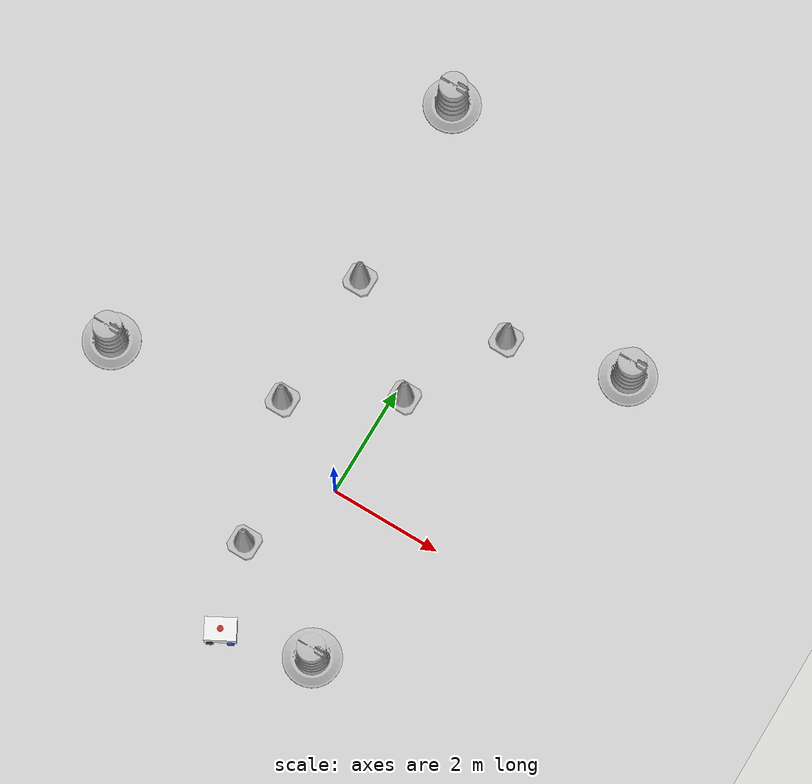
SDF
<sdf version="1.7">
 <world name="default">
  <light name="sun" type="directional">
   <pose>0 0 10 0 -0 0</pose>
   <diffuse>0.8 0.8 0.8 1</diffuse>
   <specular>0.2 0.2 0.2 1</specular>
   <attenuation>
    <range>1000</range>
    <constant>0.9</constant>
    <linear>0.01</linear>
    <quadratic>0.001</quadratic>
   </attenuation>
   <direction>-0.5 0.1 -0.9</direction>
   <spot><inner_angle>0</inner_angle><outer_angle>0</outer_angle><falloff>0</falloff></spot>
  </light>
  <model name="ground_plane">
   <static>1</static>
   <link name="link">
    <collision name="collision">
     <geometry><plane><normal>0 0 1</normal><size>100 100</size></plane></geometry>
     <surface><friction><ode><mu>100</mu><mu2>50</mu2></ode></friction></surface>
    </collision>
    <visual name="visual">
     <cast_shadows>0</cast_shadows>
     <geometry><plane><normal>0 0 1</normal><size>100 100</size></plane></geometry>
     <material>
      <script><uri>file://media/materials/scripts/gazebo.material</uri><name>Gazebo/Grey</name></script>
     </material>
    </visual>
   </link>
  </model>
  <gravity>0 0 -9.8</gravity>
  <magnetic_field>6e-06 2.3e-05 -4.2e-05</magnetic_field>
  <atmosphere type="adiabatic"/>
  <physics type="ode">
   <max_step_size>0.001</max_step_size>
   <real_time_factor>1</real_time_factor>
   <real_time_update_rate>1000</real_time_update_rate>
  </physics>
  <scene><ambient>0.4 0.4 0.4 1</ambient><background>0.7 0.7 0.7 1</background><shadows>1</shadows></scene>
  <audio><device>default</device></audio>
  <spherical_coordinates>
   <surface_model>EARTH_WGS84</surface_model>
   <latitude_deg>0</latitude_deg>
   <longitude_deg>0</longitude_deg>
   <elevation>0</elevation>
   <heading_deg>0</heading_deg>
  </spherical_coordinates>
  <model name="my_bot">
   <link name="base_link">
    <inertial>
     <pose>0.2625 0 0.074583 0 -0 0</pose>
     <mass>1.2</mass>
     <inertia>
      <ixx>0.0425877</ixx>
      <ixy>0</ixy>
      <ixz>0.00783125</ixz>
      <iyy>0.0341665</iyy>
      <iyz>-6.42685e-20</iyz>
      <izz>0.0533971</izz>
     </inertia>
    </inertial>
    <collision name="base_link_fixed_joint_lump__chassis_collision">
     <pose>0.175 0 0.125 0 -0 0</pose>
     <geometry><box><size>0.55 0.4 0.25</size></box></geometry>
    </collision>
    <collision name="base_link_fixed_joint_lump__front_left_wheel_collision_1">
     <pose>0.35 0.2 0 -1.5708 0 0</pose>
     <geometry><cylinder><length>0.06</length><radius>0.065</radius></cylinder></geometry>
     <surface><friction><ode><mu>0.0001</mu><mu2>0.0001</mu2></ode></friction></surface>
    </collision>
    <collision name="base_link_fixed_joint_lump__front_right_wheel_collision_2">
     <pose>0.35 -0.2 0 1.5708 -0 0</pose>
     <geometry><cylinder><length>0.06</length><radius>0.065</radius></cylinder></geometry>
     <surface><friction><ode><mu>0.0001</mu><mu2>0.0001</mu2></ode></friction></surface>
    </collision>
    <collision name="base_link_fixed_joint_lump__laser_frame_collision_3">
     <pose>0.175 0 0.27 0 -0 0</pose>
     <geometry><cylinder><length>0.04</length><radius>0.05</radius></cylinder></geometry>
    </collision>
    <visual name="base_link_fixed_joint_lump__chassis_visual">
     <pose>0.175 0 0.125 0 -0 0</pose>
     <geometry><box><size>0.55 0.4 0.25</size></box></geometry>
     <material>
      <script><name>Gazebo/White</name><uri>file://media/materials/scripts/gazebo.material</uri></script>
     </material>
    </visual>
    <visual name="base_link_fixed_joint_lump__front_left_wheel_visual_1">
     <pose>0.35 0.2 0 -1.5708 0 0</pose>
     <geometry><cylinder><length>0.06</length><radius>0.065</radius></cylinder></geometry>
     <material>
      <script><name>Gazebo/Black</name><uri>file://media/materials/scripts/gazebo.material</uri></script>
     </material>
    </visual>
    <visual name="base_link_fixed_joint_lump__front_right_wheel_visual_2">
     <pose>0.35 -0.2 0 1.5708 -0 0</pose>
     <geometry><cylinder><length>0.06</length><radius>0.065</radius></cylinder></geometry>
     <material>
      <script><name>Gazebo/Black</name><uri>file://media/materials/scripts/gazebo.material</uri></script>
     </material>
    </visual>
    <visual name="base_link_fixed_joint_lump__laser_frame_visual_3">
     <pose>0.175 0 0.27 0 -0 0</pose>
     <geometry><cylinder><length>0.04</length><radius>0.05</radius></cylinder></geometry>
     <material>
      <script><name>Gazebo/Red</name><uri>file://media/materials/scripts/gazebo.material</uri></script>
     </material>
    </visual>
    <sensor name="laser" type="ray">
     <visualize>1</visualize>
     <update_rate>10</update_rate>
     <ray>
      <scan>
       <horizontal>
        <samples>360</samples>
        <min_angle>-3.14</min_angle>
        <max_angle>3.14</max_angle>
        <resolution>1</resolution>
       </horizontal>
       <vertical><samples>1</samples><min_angle>0</min_angle><max_angle>0</max_angle></vertical>
      </scan>
      <range><min>0.3</min><max>12</max></range>
     </ray>
     <plugin name="laser_controller" filename="libgazebo_ros_ray_sensor.so">
      <ros><argument>~/out:=scan</argument></ros>
      <output_type>sensor_msgs/LaserScan</output_type>
      <frame_name>laser_frame</frame_name>
     </plugin>
     <pose>0.175 0 0.27 0 -0 0</pose>
    </sensor>
   </link>
   <joint name="back_left_wheel_joint" type="revolute">
    <pose relative_to="base_link">0 0.2 0 -1.5708 0 0</pose>
    <parent>base_link</parent>
    <child>back_left_wheel</child>
    <axis>
     <xyz>0 0 1</xyz>
     <limit><lower>-1e+16</lower><upper>1e+16</upper></limit>
     <dynamics><spring_reference>0</spring_reference><spring_stiffness>0</spring_stiffness></dynamics>
    </axis>
   </joint>
   <link name="back_left_wheel">
    <pose relative_to="back_left_wheel_joint">0 0 0 0 -0 0</pose>
    <inertial>
     <mass>0.3</mass>
     <inertia>
      <ixx>0.000406875</ixx>
      <ixy>0</ixy>
      <ixz>0</ixz>
      <iyy>0.000406875</iyy>
      <iyz>0</iyz>
      <izz>0.00063375</izz>
     </inertia>
    </inertial>
    <collision name="back_left_wheel_collision">
     <geometry><cylinder><length>0.06</length><radius>0.065</radius></cylinder></geometry>
    </collision>
    <visual name="back_left_wheel_visual">
     <geometry><cylinder><length>0.06</length><radius>0.065</radius></cylinder></geometry>
     <material>
      <script><name>Gazebo/Blue</name><uri>file://media/materials/scripts/gazebo.material</uri></script>
     </material>
    </visual>
   </link>
   <joint name="back_right_wheel_joint" type="revolute">
    <pose relative_to="base_link">0 -0.2 0 1.5708 -0 0</pose>
    <parent>base_link</parent>
    <child>back_right_wheel</child>
    <axis>
     <xyz>0 0 -1</xyz>
     <limit><lower>-1e+16</lower><upper>1e+16</upper></limit>
     <dynamics><spring_reference>0</spring_reference><spring_stiffness>0</spring_stiffness></dynamics>
    </axis>
   </joint>
   <link name="back_right_wheel">
    <pose relative_to="back_right_wheel_joint">0 0 0 0 -0 0</pose>
    <inertial>
     <mass>0.3</mass>
     <inertia>
      <ixx>0.000406875</ixx>
      <ixy>0</ixy>
      <ixz>0</ixz>
      <iyy>0.000406875</iyy>
      <iyz>0</iyz>
      <izz>0.00063375</izz>
     </inertia>
    </inertial>
    <collision name="back_right_wheel_collision">
     <geometry><cylinder><length>0.06</length><radius>0.065</radius></cylinder></geometry>
    </collision>
    <visual name="back_right_wheel_visual">
     <geometry><cylinder><length>0.06</length><radius>0.065</radius></cylinder></geometry>
     <material>
      <script><name>Gazebo/Blue</name><uri>file://media/materials/scripts/gazebo.material</uri></script>
     </material>
    </visual>
   </link>
   <static>0</static>
   <plugin name="gazebo_ros2_control" filename="libgazebo_ros2_control.so">
    <parameters>/home/ahmed/dev_ws/install/my_bot/share/my_bot/config/my_controllers.yaml</parameters>
   </plugin>
   <pose>-0.233836 -2.9507 0.065 0 0 -2.63941</pose>
  </model>
  <model name="Construction Cone">
   <link name="link">
    <collision name="collision">
     <geometry>
      <mesh><scale>10 10 10</scale><uri>model://construction_cone/meshes/construction_cone.dae</uri></mesh>
     </geometry>
    </collision>
    <visual name="visual">
     <geometry>
      <mesh><scale>10 10 10</scale><uri>model://construction_cone/meshes/construction_cone.dae</uri></mesh>
     </geometry>
    </visual>
    <inertial>
     <inertia><ixx>1</ixx><ixy>0</ixy><ixz>0</ixz><iyy>1</iyy><iyz>0</iyz><izz>1</izz></inertia>
     <mass>1</mass>
    </inertial>
   </link>
   <pose>-1.54235 3.36627 -0 0 -0 0</pose>
  </model>
  <model name="Construction Cone_clone">
   <link name="link">
    <collision name="collision">
     <geometry>
      <mesh><scale>10 10 10</scale><uri>model://construction_cone/meshes/construction_cone.dae</uri></mesh>
     </geometry>
    </collision>
    <visual name="visual">
     <geometry>
      <mesh><scale>10 10 10</scale><uri>model://construction_cone/meshes/construction_cone.dae</uri></mesh>
     </geometry>
    </visual>
    <inertial>
     <inertia><ixx>1</ixx><ixy>0</ixy><ixz>0</ixz><iyy>1</iyy><iyz>0</iyz><izz>1</izz></inertia>
     <mass>1</mass>
    </inertial>
   </link>
   <pose>1.13465 3.74389 -0 0 -0 0</pose>
  </model>
  <model name="Construction Cone_clone_0">
   <link name="link">
    <collision name="collision">
     <geometry>
      <mesh><scale>10 10 10</scale><uri>model://construction_cone/meshes/construction_cone.dae</uri></mesh>
     </geometry>
    </collision>
    <visual name="visual">
     <geometry>
      <mesh><scale>10 10 10</scale><uri>model://construction_cone/meshes/construction_cone.dae</uri></mesh>
     </geometry>
    </visual>
    <inertial>
     <inertia><ixx>1</ixx><ixy>0</ixy><ixz>0</ixz><iyy>1</iyy><iyz>0</iyz><izz>1</izz></inertia>
     <mass>1</mass>
    </inertial>
   </link>
   <pose>0.165147 1.98424 -9e-06 -1e-06 -0 -0</pose>
  </model>
  <model name="Construction Cone_clone_1">
   <link name="link">
    <collision name="collision">
     <geometry>
      <mesh><scale>10 10 10</scale><uri>model://construction_cone/meshes/construction_cone.dae</uri></mesh>
     </geometry>
    </collision>
    <visual name="visual">
     <geometry>
      <mesh><scale>10 10 10</scale><uri>model://construction_cone/meshes/construction_cone.dae</uri></mesh>
     </geometry>
    </visual>
    <inertial>
     <inertia><ixx>1</ixx><ixy>0</ixy><ixz>0</ixz><iyy>1</iyy><iyz>0</iyz><izz>1</izz></inertia>
     <mass>1</mass>
    </inertial>
   </link>
   <pose>-1.57821 0.881828 -9e-06 -1e-06 -0 -0</pose>
  </model>
  <model name="Construction Cone_clone_2">
   <link name="link">
    <collision name="collision">
     <geometry>
      <mesh><scale>10 10 10</scale><uri>model://construction_cone/meshes/construction_cone.dae</uri></mesh>
     </geometry>
    </collision>
    <visual name="visual">
     <geometry>
      <mesh><scale>10 10 10</scale><uri>model://construction_cone/meshes/construction_cone.dae</uri></mesh>
     </geometry>
    </visual>
    <inertial>
     <inertia><ixx>1</ixx><ixy>0</ixy><ixz>0</ixz><iyy>1</iyy><iyz>0</iyz><izz>1</izz></inertia>
     <mass>1</mass>
    </inertial>
   </link>
   <pose>-0.84105 -1.54255 -2e-06 -3e-06 -1e-06 -0</pose>
  </model>
  <model name="Construction Barrel">
   <link name="link">
    <inertial>
     <pose>0 0 0.4 0 -0 0</pose>
     <mass>500</mass>
     <inertia><ixx>51.2096</ixx><iyy>51.2096</iyy><izz>25</izz><ixy>0</ixy><ixz>0</ixz><iyz>0</iyz></inertia>
    </inertial>
    <collision name="collision">
     <geometry><mesh><uri>model://construction_barrel/meshes/construction_barrel.dae</uri></mesh></geometry>
    </collision>
    <visual name="visual">
     <geometry><mesh><uri>model://construction_barrel/meshes/construction_barrel.dae</uri></mesh></geometry>
    </visual>
   </link>
   <pose>1.14995 -2.62163 -1e-06 3e-06 1e-05 -7e-06</pose>
  </model>
  <model name="Construction Barrel_clone">
   <link name="link">
    <inertial>
     <pose>0 0 0.4 0 -0 0</pose>
     <mass>500</mass>
     <inertia><ixx>51.2096</ixx><iyy>51.2096</iyy><izz>25</izz><ixy>0</ixy><ixz>0</ixz><iyz>0</iyz></inertia>
    </inertial>
    <collision name="collision">
     <geometry><mesh><uri>model://construction_barrel/meshes/construction_barrel.dae</uri></mesh></geometry>
    </collision>
    <visual name="visual">
     <geometry><mesh><uri>model://construction_barrel/meshes/construction_barrel.dae</uri></mesh></geometry>
    </visual>
   </link>
   <pose>3.23663 4.26535 -2e-06 -4e-06 7e-06 -8e-06</pose>
  </model>
  <model name="Construction Barrel_clone_0">
   <link name="link">
    <inertial>
     <pose>0 0 0.4 0 -0 0</pose>
     <mass>500</mass>
     <inertia><ixx>51.2096</ixx><iyy>51.2096</iyy><izz>25</izz><ixy>0</ixy><ixz>0</ixz><iyz>0</iyz></inertia>
    </inertial>
    <collision name="collision">
     <geometry><mesh><uri>model://construction_barrel/meshes/construction_barrel.dae</uri></mesh></geometry>
    </collision>
    <visual name="visual">
     <geometry><mesh><uri>model://construction_barrel/meshes/construction_barrel.dae</uri></mesh></geometry>
    </visual>
   </link>
   <pose>-1.79757 6.85717 -1e-06 1e-06 -2e-06 -5e-06</pose>
  </model>
  <model name="Construction Barrel_clone_1">
   <link name="link">
    <inertial>
     <pose>0 0 0.4 0 -0 0</pose>
     <mass>500</mass>
     <inertia><ixx>51.2096</ixx><iyy>51.2096</iyy><izz>25</izz><ixy>0</ixy><ixz>0</ixz><iyz>0</iyz></inertia>
    </inertial>
    <collision name="collision">
     <geometry><mesh><uri>model://construction_barrel/meshes/construction_barrel.dae</uri></mesh></geometry>
    </collision>
    <visual name="visual">
     <geometry><mesh><uri>model://construction_barrel/meshes/construction_barrel.dae</uri></mesh></geometry>
    </visual>
   </link>
   <pose>-4.61066 0.258962 -3e-06 -6e-06 -5e-06 -3e-06</pose>
  </model>
 </world>
</sdf>
